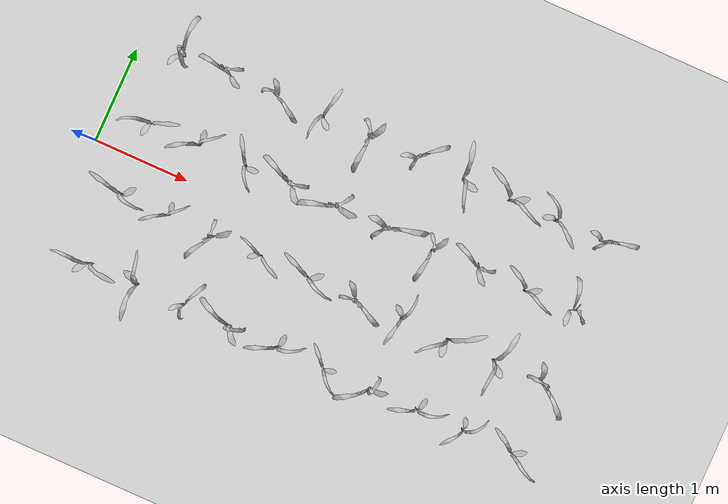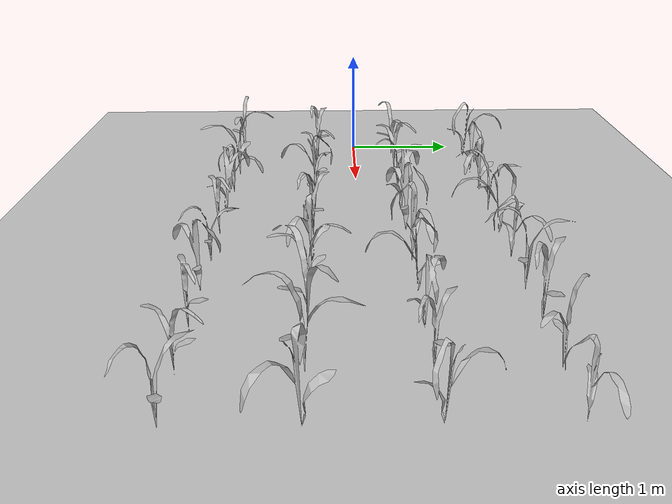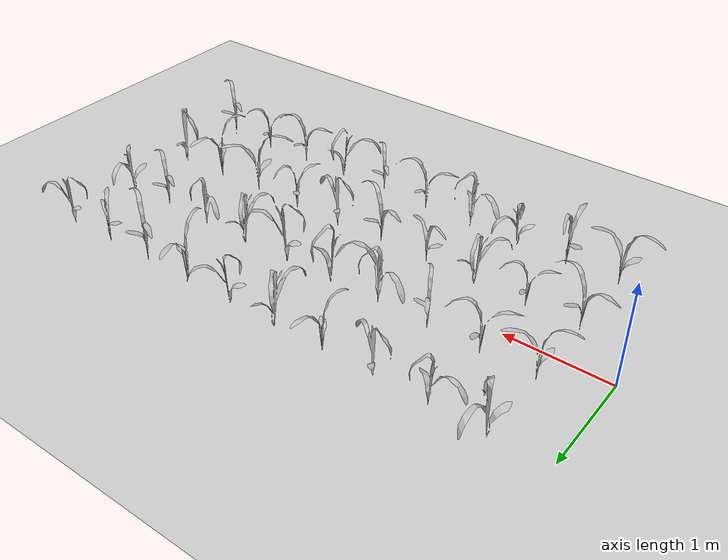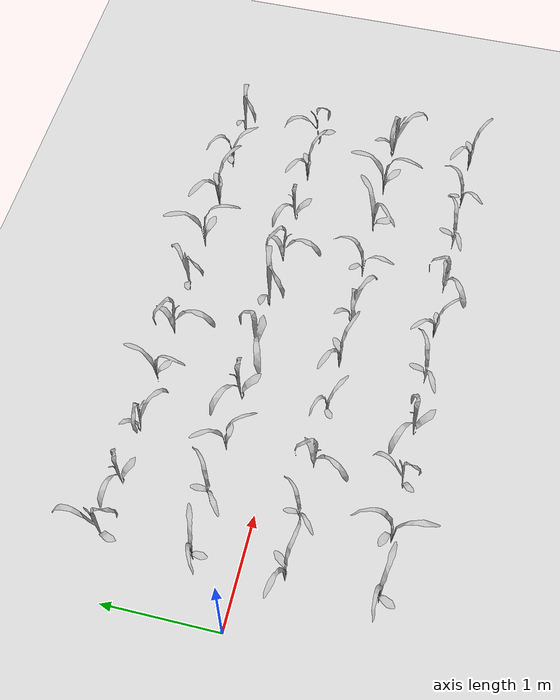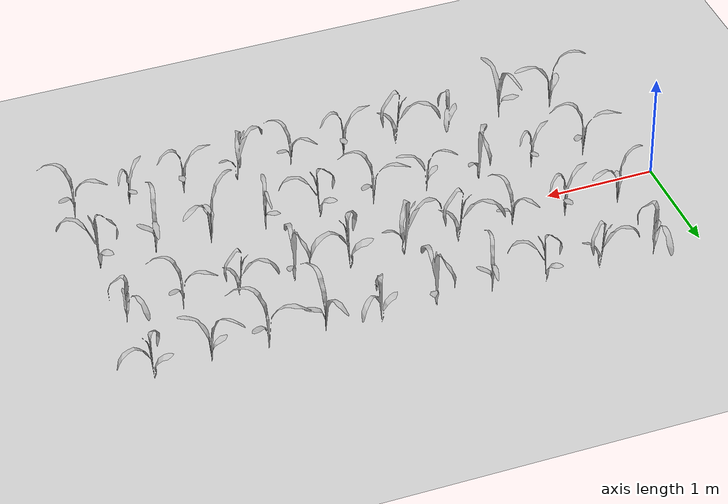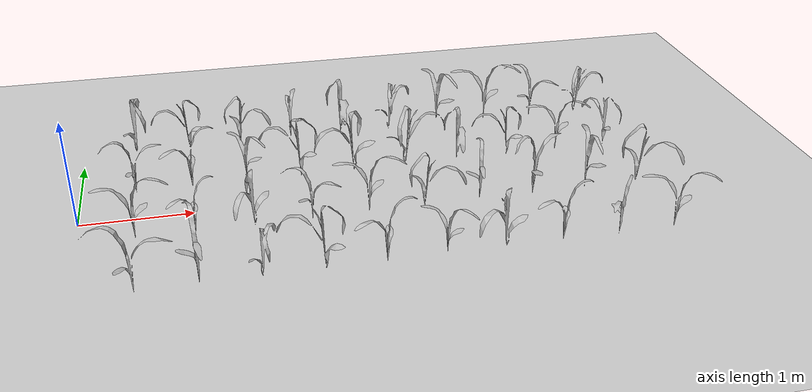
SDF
<sdf version="1.6">
 <world name="default">
  <model name="ground_plane">
   <static>1</static>
   <link name="link">
    <collision name="collision">
     <geometry><plane><normal>0 0 1</normal><size>100 100</size></plane></geometry>
     <surface>
      <contact><collide_bitmask>65535</collide_bitmask></contact>
      <friction><ode><mu>100</mu><mu2>50</mu2></ode></friction>
     </surface>
    </collision>
    <visual name="visual">
     <cast_shadows>0</cast_shadows>
     <geometry><plane><normal>0 0 1</normal><size>100 100</size></plane></geometry>
     <material>
      <script><uri>file://media/materials/scripts/gazebo.material</uri><name>Gazebo/Grey</name></script>
     </material>
    </visual>
   </link>
  </model>
  <model name="maize_02_0000">
   <pose>0.5 0.375 0.05 0 -0 2.486436329962448</pose>
   <link name="maize_02_0000_link">
    <inertial>
     <mass>5.0</mass>
     <inertia>
      <ixx>0.0033416667</ixx>
      <ixy>0</ixy>
      <ixz>0</ixz>
      <iyy>0.0033416667</iyy>
      <iyz>0</iyz>
      <izz>0.000016666667</izz>
     </inertia>
     <pose>0 0 0.1 0 0 0</pose>
    </inertial>
    <collision name="collision">
     <pose>0 0 0.2 0 -0 0</pose>
     <geometry><box><size>0.02 0.02 0.4</size></box></geometry>
     <surface><friction><ode><mu>10</mu><mu2>10</mu2></ode></friction></surface>
    </collision>
    <visual name="visual">
     <geometry>
      <mesh>
       <uri>model://maize_02/meshes/maize_02.dae</uri>
       <scale>0.594464190907645 0.594464190907645 0.594464190907645</scale>
      </mesh>
     </geometry>
    </visual>
   </link>
  </model>
  <model name="maize_01_0001">
   <pose>0.5 1.125 0.05 0 -0 2.298788414996738</pose>
   <link name="maize_01_0001_link">
    <inertial>
     <mass>5.0</mass>
     <inertia>
      <ixx>0.0033416667</ixx>
      <ixy>0</ixy>
      <ixz>0</ixz>
      <iyy>0.0033416667</iyy>
      <iyz>0</iyz>
      <izz>0.000016666667</izz>
     </inertia>
     <pose>0 0 0.1 0 0 0</pose>
    </inertial>
    <collision name="collision">
     <pose>0 0 0.2 0 -0 0</pose>
     <geometry><box><size>0.02 0.02 0.4</size></box></geometry>
     <surface><friction><ode><mu>10</mu><mu2>10</mu2></ode></friction></surface>
    </collision>
    <visual name="visual">
     <geometry>
      <mesh>
       <uri>model://maize_01/meshes/maize_01.dae</uri>
       <scale>0.6277734751738697 0.6277734751738697 0.6277734751738697</scale>
      </mesh>
     </geometry>
    </visual>
   </link>
  </model>
  <model name="maize_02_0002">
   <pose>0.5 -0.375 0.05 0 -0 5.080375280023383</pose>
   <link name="maize_02_0002_link">
    <inertial>
     <mass>5.0</mass>
     <inertia>
      <ixx>0.0033416667</ixx>
      <ixy>0</ixy>
      <ixz>0</ixz>
      <iyy>0.0033416667</iyy>
      <iyz>0</iyz>
      <izz>0.000016666667</izz>
     </inertia>
     <pose>0 0 0.1 0 0 0</pose>
    </inertial>
    <collision name="collision">
     <pose>0 0 0.2 0 -0 0</pose>
     <geometry><box><size>0.02 0.02 0.4</size></box></geometry>
     <surface><friction><ode><mu>10</mu><mu2>10</mu2></ode></friction></surface>
    </collision>
    <visual name="visual">
     <geometry>
      <mesh>
       <uri>model://maize_02/meshes/maize_02.dae</uri>
       <scale>0.6373901294734036 0.6373901294734036 0.6373901294734036</scale>
      </mesh>
     </geometry>
    </visual>
   </link>
  </model>
  <model name="maize_02_0003">
   <pose>0.5 -1.125 0.05 0 -0 2.0655652335273587</pose>
   <link name="maize_02_0003_link">
    <inertial>
     <mass>5.0</mass>
     <inertia>
      <ixx>0.0033416667</ixx>
      <ixy>0</ixy>
      <ixz>0</ixz>
      <iyy>0.0033416667</iyy>
      <iyz>0</iyz>
      <izz>0.000016666667</izz>
     </inertia>
     <pose>0 0 0.1 0 0 0</pose>
    </inertial>
    <collision name="collision">
     <pose>0 0 0.2 0 -0 0</pose>
     <geometry><box><size>0.02 0.02 0.4</size></box></geometry>
     <surface><friction><ode><mu>10</mu><mu2>10</mu2></ode></friction></surface>
    </collision>
    <visual name="visual">
     <geometry>
      <mesh>
       <uri>model://maize_02/meshes/maize_02.dae</uri>
       <scale>0.6587457137448713 0.6587457137448713 0.6587457137448713</scale>
      </mesh>
     </geometry>
    </visual>
   </link>
  </model>
  <model name="maize_02_0004">
   <pose>1.0 0.375 0.05 0 -0 5.888778220820629</pose>
   <link name="maize_02_0004_link">
    <inertial>
     <mass>5.0</mass>
     <inertia>
      <ixx>0.0033416667</ixx>
      <ixy>0</ixy>
      <ixz>0</ixz>
      <iyy>0.0033416667</iyy>
      <iyz>0</iyz>
      <izz>0.000016666667</izz>
     </inertia>
     <pose>0 0 0.1 0 0 0</pose>
    </inertial>
    <collision name="collision">
     <pose>0 0 0.2 0 -0 0</pose>
     <geometry><box><size>0.02 0.02 0.4</size></box></geometry>
     <surface><friction><ode><mu>10</mu><mu2>10</mu2></ode></friction></surface>
    </collision>
    <visual name="visual">
     <geometry>
      <mesh>
       <uri>model://maize_02/meshes/maize_02.dae</uri>
       <scale>0.5925092554410509 0.5925092554410509 0.5925092554410509</scale>
      </mesh>
     </geometry>
    </visual>
   </link>
  </model>
  <model name="maize_01_0005">
   <pose>1.0 1.125 0.05 0 -0 3.800942496032068</pose>
   <link name="maize_01_0005_link">
    <inertial>
     <mass>5.0</mass>
     <inertia>
      <ixx>0.0033416667</ixx>
      <ixy>0</ixy>
      <ixz>0</ixz>
      <iyy>0.0033416667</iyy>
      <iyz>0</iyz>
      <izz>0.000016666667</izz>
     </inertia>
     <pose>0 0 0.1 0 0 0</pose>
    </inertial>
    <collision name="collision">
     <pose>0 0 0.2 0 -0 0</pose>
     <geometry><box><size>0.02 0.02 0.4</size></box></geometry>
     <surface><friction><ode><mu>10</mu><mu2>10</mu2></ode></friction></surface>
    </collision>
    <visual name="visual">
     <geometry>
      <mesh>
       <uri>model://maize_01/meshes/maize_01.dae</uri>
       <scale>0.5658001392971347 0.5658001392971347 0.5658001392971347</scale>
      </mesh>
     </geometry>
    </visual>
   </link>
  </model>
  <model name="maize_02_0006">
   <pose>1.0 -0.375 0.05 0 -0 5.960453748156834</pose>
   <link name="maize_02_0006_link">
    <inertial>
     <mass>5.0</mass>
     <inertia>
      <ixx>0.0033416667</ixx>
      <ixy>0</ixy>
      <ixz>0</ixz>
      <iyy>0.0033416667</iyy>
      <iyz>0</iyz>
      <izz>0.000016666667</izz>
     </inertia>
     <pose>0 0 0.1 0 0 0</pose>
    </inertial>
    <collision name="collision">
     <pose>0 0 0.2 0 -0 0</pose>
     <geometry><box><size>0.02 0.02 0.4</size></box></geometry>
     <surface><friction><ode><mu>10</mu><mu2>10</mu2></ode></friction></surface>
    </collision>
    <visual name="visual">
     <geometry>
      <mesh>
       <uri>model://maize_02/meshes/maize_02.dae</uri>
       <scale>0.5101669844444433 0.5101669844444433 0.5101669844444433</scale>
      </mesh>
     </geometry>
    </visual>
   </link>
  </model>
  <model name="maize_02_0007">
   <pose>1.0 -1.125 0.05 0 -0 0.7257184616854857</pose>
   <link name="maize_02_0007_link">
    <inertial>
     <mass>5.0</mass>
     <inertia>
      <ixx>0.0033416667</ixx>
      <ixy>0</ixy>
      <ixz>0</ixz>
      <iyy>0.0033416667</iyy>
      <iyz>0</iyz>
      <izz>0.000016666667</izz>
     </inertia>
     <pose>0 0 0.1 0 0 0</pose>
    </inertial>
    <collision name="collision">
     <pose>0 0 0.2 0 -0 0</pose>
     <geometry><box><size>0.02 0.02 0.4</size></box></geometry>
     <surface><friction><ode><mu>10</mu><mu2>10</mu2></ode></friction></surface>
    </collision>
    <visual name="visual">
     <geometry>
      <mesh>
       <uri>model://maize_02/meshes/maize_02.dae</uri>
       <scale>0.6774858792550148 0.6774858792550148 0.6774858792550148</scale>
      </mesh>
     </geometry>
    </visual>
   </link>
  </model>
  <model name="maize_02_0008">
   <pose>1.5 0.375 0.05 0 -0 4.276486220324584</pose>
   <link name="maize_02_0008_link">
    <inertial>
     <mass>5.0</mass>
     <inertia>
      <ixx>0.0033416667</ixx>
      <ixy>0</ixy>
      <ixz>0</ixz>
      <iyy>0.0033416667</iyy>
      <iyz>0</iyz>
      <izz>0.000016666667</izz>
     </inertia>
     <pose>0 0 0.1 0 0 0</pose>
    </inertial>
    <collision name="collision">
     <pose>0 0 0.2 0 -0 0</pose>
     <geometry><box><size>0.02 0.02 0.4</size></box></geometry>
     <surface><friction><ode><mu>10</mu><mu2>10</mu2></ode></friction></surface>
    </collision>
    <visual name="visual">
     <geometry>
      <mesh>
       <uri>model://maize_02/meshes/maize_02.dae</uri>
       <scale>0.5624697977309072 0.5624697977309072 0.5624697977309072</scale>
      </mesh>
     </geometry>
    </visual>
   </link>
  </model>
  <model name="maize_01_0009">
   <pose>1.5 1.125 0.05 0 -0 0.226990537836368</pose>
   <link name="maize_01_0009_link">
    <inertial>
     <mass>5.0</mass>
     <inertia>
      <ixx>0.0033416667</ixx>
      <ixy>0</ixy>
      <ixz>0</ixz>
      <iyy>0.0033416667</iyy>
      <iyz>0</iyz>
      <izz>0.000016666667</izz>
     </inertia>
     <pose>0 0 0.1 0 0 0</pose>
    </inertial>
    <collision name="collision">
     <pose>0 0 0.2 0 -0 0</pose>
     <geometry><box><size>0.02 0.02 0.4</size></box></geometry>
     <surface><friction><ode><mu>10</mu><mu2>10</mu2></ode></friction></surface>
    </collision>
    <visual name="visual">
     <geometry>
      <mesh>
       <uri>model://maize_01/meshes/maize_01.dae</uri>
       <scale>0.5509734204890646 0.5509734204890646 0.5509734204890646</scale>
      </mesh>
     </geometry>
    </visual>
   </link>
  </model>
  <model name="maize_01_0010">
   <pose>1.5 -0.375 0.05 0 -0 4.998152133039663</pose>
   <link name="maize_01_0010_link">
    <inertial>
     <mass>5.0</mass>
     <inertia>
      <ixx>0.0033416667</ixx>
      <ixy>0</ixy>
      <ixz>0</ixz>
      <iyy>0.0033416667</iyy>
      <iyz>0</iyz>
      <izz>0.000016666667</izz>
     </inertia>
     <pose>0 0 0.1 0 0 0</pose>
    </inertial>
    <collision name="collision">
     <pose>0 0 0.2 0 -0 0</pose>
     <geometry><box><size>0.02 0.02 0.4</size></box></geometry>
     <surface><friction><ode><mu>10</mu><mu2>10</mu2></ode></friction></surface>
    </collision>
    <visual name="visual">
     <geometry>
      <mesh>
       <uri>model://maize_01/meshes/maize_01.dae</uri>
       <scale>0.5865168241783152 0.5865168241783152 0.5865168241783152</scale>
      </mesh>
     </geometry>
    </visual>
   </link>
  </model>
  <model name="maize_01_0011">
   <pose>1.5 -1.125 0.05 0 -0 1.9324223692315545</pose>
   <link name="maize_01_0011_link">
    <inertial>
     <mass>5.0</mass>
     <inertia>
      <ixx>0.0033416667</ixx>
      <ixy>0</ixy>
      <ixz>0</ixz>
      <iyy>0.0033416667</iyy>
      <iyz>0</iyz>
      <izz>0.000016666667</izz>
     </inertia>
     <pose>0 0 0.1 0 0 0</pose>
    </inertial>
    <collision name="collision">
     <pose>0 0 0.2 0 -0 0</pose>
     <geometry><box><size>0.02 0.02 0.4</size></box></geometry>
     <surface><friction><ode><mu>10</mu><mu2>10</mu2></ode></friction></surface>
    </collision>
    <visual name="visual">
     <geometry>
      <mesh>
       <uri>model://maize_01/meshes/maize_01.dae</uri>
       <scale>0.5003540891792582 0.5003540891792582 0.5003540891792582</scale>
      </mesh>
     </geometry>
    </visual>
   </link>
  </model>
  <model name="maize_01_0012">
   <pose>2.0 0.375 0.05 0 -0 3.506546388485013</pose>
   <link name="maize_01_0012_link">
    <inertial>
     <mass>5.0</mass>
     <inertia>
      <ixx>0.0033416667</ixx>
      <ixy>0</ixy>
      <ixz>0</ixz>
      <iyy>0.0033416667</iyy>
      <iyz>0</iyz>
      <izz>0.000016666667</izz>
     </inertia>
     <pose>0 0 0.1 0 0 0</pose>
    </inertial>
    <collision name="collision">
     <pose>0 0 0.2 0 -0 0</pose>
     <geometry><box><size>0.02 0.02 0.4</size></box></geometry>
     <surface><friction><ode><mu>10</mu><mu2>10</mu2></ode></friction></surface>
    </collision>
    <visual name="visual">
     <geometry>
      <mesh>
       <uri>model://maize_01/meshes/maize_01.dae</uri>
       <scale>0.6499434881953365 0.6499434881953365 0.6499434881953365</scale>
      </mesh>
     </geometry>
    </visual>
   </link>
  </model>
  <model name="maize_02_0013">
   <pose>2.0 1.125 0.05 0 -0 3.5083101263330416</pose>
   <link name="maize_02_0013_link">
    <inertial>
     <mass>5.0</mass>
     <inertia>
      <ixx>0.0033416667</ixx>
      <ixy>0</ixy>
      <ixz>0</ixz>
      <iyy>0.0033416667</iyy>
      <iyz>0</iyz>
      <izz>0.000016666667</izz>
     </inertia>
     <pose>0 0 0.1 0 0 0</pose>
    </inertial>
    <collision name="collision">
     <pose>0 0 0.2 0 -0 0</pose>
     <geometry><box><size>0.02 0.02 0.4</size></box></geometry>
     <surface><friction><ode><mu>10</mu><mu2>10</mu2></ode></friction></surface>
    </collision>
    <visual name="visual">
     <geometry>
      <mesh>
       <uri>model://maize_02/meshes/maize_02.dae</uri>
       <scale>0.5802755091073676 0.5802755091073676 0.5802755091073676</scale>
      </mesh>
     </geometry>
    </visual>
   </link>
  </model>
  <model name="maize_02_0014">
   <pose>2.0 -0.375 0.05 0 -0 1.6967970722052805</pose>
   <link name="maize_02_0014_link">
    <inertial>
     <mass>5.0</mass>
     <inertia>
      <ixx>0.0033416667</ixx>
      <ixy>0</ixy>
      <ixz>0</ixz>
      <iyy>0.0033416667</iyy>
      <iyz>0</iyz>
      <izz>0.000016666667</izz>
     </inertia>
     <pose>0 0 0.1 0 0 0</pose>
    </inertial>
    <collision name="collision">
     <pose>0 0 0.2 0 -0 0</pose>
     <geometry><box><size>0.02 0.02 0.4</size></box></geometry>
     <surface><friction><ode><mu>10</mu><mu2>10</mu2></ode></friction></surface>
    </collision>
    <visual name="visual">
     <geometry>
      <mesh>
       <uri>model://maize_02/meshes/maize_02.dae</uri>
       <scale>0.5231342005749441 0.5231342005749441 0.5231342005749441</scale>
      </mesh>
     </geometry>
    </visual>
   </link>
  </model>
  <model name="maize_01_0015">
   <pose>2.0 -1.125 0.05 0 -0 3.519975309279825</pose>
   <link name="maize_01_0015_link">
    <inertial>
     <mass>5.0</mass>
     <inertia>
      <ixx>0.0033416667</ixx>
      <ixy>0</ixy>
      <ixz>0</ixz>
      <iyy>0.0033416667</iyy>
      <iyz>0</iyz>
      <izz>0.000016666667</izz>
     </inertia>
     <pose>0 0 0.1 0 0 0</pose>
    </inertial>
    <collision name="collision">
     <pose>0 0 0.2 0 -0 0</pose>
     <geometry><box><size>0.02 0.02 0.4</size></box></geometry>
     <surface><friction><ode><mu>10</mu><mu2>10</mu2></ode></friction></surface>
    </collision>
    <visual name="visual">
     <geometry>
      <mesh>
       <uri>model://maize_01/meshes/maize_01.dae</uri>
       <scale>0.6468035016286179 0.6468035016286179 0.6468035016286179</scale>
      </mesh>
     </geometry>
    </visual>
   </link>
  </model>
  <model name="maize_01_0016">
   <pose>2.5 0.375 0.05 0 -0 4.247404974419108</pose>
   <link name="maize_01_0016_link">
    <inertial>
     <mass>5.0</mass>
     <inertia>
      <ixx>0.0033416667</ixx>
      <ixy>0</ixy>
      <ixz>0</ixz>
      <iyy>0.0033416667</iyy>
      <iyz>0</iyz>
      <izz>0.000016666667</izz>
     </inertia>
     <pose>0 0 0.1 0 0 0</pose>
    </inertial>
    <collision name="collision">
     <pose>0 0 0.2 0 -0 0</pose>
     <geometry><box><size>0.02 0.02 0.4</size></box></geometry>
     <surface><friction><ode><mu>10</mu><mu2>10</mu2></ode></friction></surface>
    </collision>
    <visual name="visual">
     <geometry>
      <mesh>
       <uri>model://maize_01/meshes/maize_01.dae</uri>
       <scale>0.6690471731804969 0.6690471731804969 0.6690471731804969</scale>
      </mesh>
     </geometry>
    </visual>
   </link>
  </model>
  <model name="maize_01_0017">
   <pose>2.5 1.125 0.05 0 -0 5.449269828116384</pose>
   <link name="maize_01_0017_link">
    <inertial>
     <mass>5.0</mass>
     <inertia>
      <ixx>0.0033416667</ixx>
      <ixy>0</ixy>
      <ixz>0</ixz>
      <iyy>0.0033416667</iyy>
      <iyz>0</iyz>
      <izz>0.000016666667</izz>
     </inertia>
     <pose>0 0 0.1 0 0 0</pose>
    </inertial>
    <collision name="collision">
     <pose>0 0 0.2 0 -0 0</pose>
     <geometry><box><size>0.02 0.02 0.4</size></box></geometry>
     <surface><friction><ode><mu>10</mu><mu2>10</mu2></ode></friction></surface>
    </collision>
    <visual name="visual">
     <geometry>
      <mesh>
       <uri>model://maize_01/meshes/maize_01.dae</uri>
       <scale>0.6421622239480822 0.6421622239480822 0.6421622239480822</scale>
      </mesh>
     </geometry>
    </visual>
   </link>
  </model>
  <model name="maize_02_0018">
   <pose>2.5 -0.375 0.05 0 -0 4.906010909218893</pose>
   <link name="maize_02_0018_link">
    <inertial>
     <mass>5.0</mass>
     <inertia>
      <ixx>0.0033416667</ixx>
      <ixy>0</ixy>
      <ixz>0</ixz>
      <iyy>0.0033416667</iyy>
      <iyz>0</iyz>
      <izz>0.000016666667</izz>
     </inertia>
     <pose>0 0 0.1 0 0 0</pose>
    </inertial>
    <collision name="collision">
     <pose>0 0 0.2 0 -0 0</pose>
     <geometry><box><size>0.02 0.02 0.4</size></box></geometry>
     <surface><friction><ode><mu>10</mu><mu2>10</mu2></ode></friction></surface>
    </collision>
    <visual name="visual">
     <geometry>
      <mesh>
       <uri>model://maize_02/meshes/maize_02.dae</uri>
       <scale>0.626600553921358 0.626600553921358 0.626600553921358</scale>
      </mesh>
     </geometry>
    </visual>
   </link>
  </model>
  <model name="maize_02_0019">
   <pose>2.5 -1.125 0.05 0 -0 5.69318676119266</pose>
   <link name="maize_02_0019_link">
    <inertial>
     <mass>5.0</mass>
     <inertia>
      <ixx>0.0033416667</ixx>
      <ixy>0</ixy>
      <ixz>0</ixz>
      <iyy>0.0033416667</iyy>
      <iyz>0</iyz>
      <izz>0.000016666667</izz>
     </inertia>
     <pose>0 0 0.1 0 0 0</pose>
    </inertial>
    <collision name="collision">
     <pose>0 0 0.2 0 -0 0</pose>
     <geometry><box><size>0.02 0.02 0.4</size></box></geometry>
     <surface><friction><ode><mu>10</mu><mu2>10</mu2></ode></friction></surface>
    </collision>
    <visual name="visual">
     <geometry>
      <mesh>
       <uri>model://maize_02/meshes/maize_02.dae</uri>
       <scale>0.5929270849490827 0.5929270849490827 0.5929270849490827</scale>
      </mesh>
     </geometry>
    </visual>
   </link>
  </model>
  <model name="maize_01_0020">
   <pose>3.0 0.375 0.05 0 -0 1.043117871051002</pose>
   <link name="maize_01_0020_link">
    <inertial>
     <mass>5.0</mass>
     <inertia>
      <ixx>0.0033416667</ixx>
      <ixy>0</ixy>
      <ixz>0</ixz>
      <iyy>0.0033416667</iyy>
      <iyz>0</iyz>
      <izz>0.000016666667</izz>
     </inertia>
     <pose>0 0 0.1 0 0 0</pose>
    </inertial>
    <collision name="collision">
     <pose>0 0 0.2 0 -0 0</pose>
     <geometry><box><size>0.02 0.02 0.4</size></box></geometry>
     <surface><friction><ode><mu>10</mu><mu2>10</mu2></ode></friction></surface>
    </collision>
    <visual name="visual">
     <geometry>
      <mesh>
       <uri>model://maize_01/meshes/maize_01.dae</uri>
       <scale>0.6769761855756116 0.6769761855756116 0.6769761855756116</scale>
      </mesh>
     </geometry>
    </visual>
   </link>
  </model>
  <model name="maize_01_0021">
   <pose>3.0 1.125 0.05 0 -0 1.5060979926703266</pose>
   <link name="maize_01_0021_link">
    <inertial>
     <mass>5.0</mass>
     <inertia>
      <ixx>0.0033416667</ixx>
      <ixy>0</ixy>
      <ixz>0</ixz>
      <iyy>0.0033416667</iyy>
      <iyz>0</iyz>
      <izz>0.000016666667</izz>
     </inertia>
     <pose>0 0 0.1 0 0 0</pose>
    </inertial>
    <collision name="collision">
     <pose>0 0 0.2 0 -0 0</pose>
     <geometry><box><size>0.02 0.02 0.4</size></box></geometry>
     <surface><friction><ode><mu>10</mu><mu2>10</mu2></ode></friction></surface>
    </collision>
    <visual name="visual">
     <geometry>
      <mesh>
       <uri>model://maize_01/meshes/maize_01.dae</uri>
       <scale>0.5539245820906094 0.5539245820906094 0.5539245820906094</scale>
      </mesh>
     </geometry>
    </visual>
   </link>
  </model>
  <model name="maize_01_0022">
   <pose>3.0 -0.375 0.05 0 -0 0.33031992653440345</pose>
   <link name="maize_01_0022_link">
    <inertial>
     <mass>5.0</mass>
     <inertia>
      <ixx>0.0033416667</ixx>
      <ixy>0</ixy>
      <ixz>0</ixz>
      <iyy>0.0033416667</iyy>
      <iyz>0</iyz>
      <izz>0.000016666667</izz>
     </inertia>
     <pose>0 0 0.1 0 0 0</pose>
    </inertial>
    <collision name="collision">
     <pose>0 0 0.2 0 -0 0</pose>
     <geometry><box><size>0.02 0.02 0.4</size></box></geometry>
     <surface><friction><ode><mu>10</mu><mu2>10</mu2></ode></friction></surface>
    </collision>
    <visual name="visual">
     <geometry>
      <mesh>
       <uri>model://maize_01/meshes/maize_01.dae</uri>
       <scale>0.5847663939026114 0.5847663939026114 0.5847663939026114</scale>
      </mesh>
     </geometry>
    </visual>
   </link>
  </model>
  <model name="maize_02_0023">
   <pose>3.0 -1.125 0.05 0 -0 4.489898993022544</pose>
   <link name="maize_02_0023_link">
    <inertial>
     <mass>5.0</mass>
     <inertia>
      <ixx>0.0033416667</ixx>
      <ixy>0</ixy>
      <ixz>0</ixz>
      <iyy>0.0033416667</iyy>
      <iyz>0</iyz>
      <izz>0.000016666667</izz>
     </inertia>
     <pose>0 0 0.1 0 0 0</pose>
    </inertial>
    <collision name="collision">
     <pose>0 0 0.2 0 -0 0</pose>
     <geometry><box><size>0.02 0.02 0.4</size></box></geometry>
     <surface><friction><ode><mu>10</mu><mu2>10</mu2></ode></friction></surface>
    </collision>
    <visual name="visual">
     <geometry>
      <mesh>
       <uri>model://maize_02/meshes/maize_02.dae</uri>
       <scale>0.5223654487258567 0.5223654487258567 0.5223654487258567</scale>
      </mesh>
     </geometry>
    </visual>
   </link>
  </model>
  <model name="maize_01_0024">
   <pose>3.5 0.375 0.05 0 -0 5.3651282673576715</pose>
   <link name="maize_01_0024_link">
    <inertial>
     <mass>5.0</mass>
     <inertia>
      <ixx>0.0033416667</ixx>
      <ixy>0</ixy>
      <ixz>0</ixz>
      <iyy>0.0033416667</iyy>
      <iyz>0</iyz>
      <izz>0.000016666667</izz>
     </inertia>
     <pose>0 0 0.1 0 0 0</pose>
    </inertial>
    <collision name="collision">
     <pose>0 0 0.2 0 -0 0</pose>
     <geometry><box><size>0.02 0.02 0.4</size></box></geometry>
     <surface><friction><ode><mu>10</mu><mu2>10</mu2></ode></friction></surface>
    </collision>
    <visual name="visual">
     <geometry>
      <mesh>
       <uri>model://maize_01/meshes/maize_01.dae</uri>
       <scale>0.5986903436208948 0.5986903436208948 0.5986903436208948</scale>
      </mesh>
     </geometry>
    </visual>
   </link>
  </model>
  <model name="maize_02_0025">
   <pose>3.5 1.125 0.05 0 -0 3.974233096109407</pose>
   <link name="maize_02_0025_link">
    <inertial>
     <mass>5.0</mass>
     <inertia>
      <ixx>0.0033416667</ixx>
      <ixy>0</ixy>
      <ixz>0</ixz>
      <iyy>0.0033416667</iyy>
      <iyz>0</iyz>
      <izz>0.000016666667</izz>
     </inertia>
     <pose>0 0 0.1 0 0 0</pose>
    </inertial>
    <collision name="collision">
     <pose>0 0 0.2 0 -0 0</pose>
     <geometry><box><size>0.02 0.02 0.4</size></box></geometry>
     <surface><friction><ode><mu>10</mu><mu2>10</mu2></ode></friction></surface>
    </collision>
    <visual name="visual">
     <geometry>
      <mesh>
       <uri>model://maize_02/meshes/maize_02.dae</uri>
       <scale>0.6840697809252837 0.6840697809252837 0.6840697809252837</scale>
      </mesh>
     </geometry>
    </visual>
   </link>
  </model>
  <model name="maize_02_0026">
   <pose>3.5 -0.375 0.05 0 -0 0.3855338366262953</pose>
   <link name="maize_02_0026_link">
    <inertial>
     <mass>5.0</mass>
     <inertia>
      <ixx>0.0033416667</ixx>
      <ixy>0</ixy>
      <ixz>0</ixz>
      <iyy>0.0033416667</iyy>
      <iyz>0</iyz>
      <izz>0.000016666667</izz>
     </inertia>
     <pose>0 0 0.1 0 0 0</pose>
    </inertial>
    <collision name="collision">
     <pose>0 0 0.2 0 -0 0</pose>
     <geometry><box><size>0.02 0.02 0.4</size></box></geometry>
     <surface><friction><ode><mu>10</mu><mu2>10</mu2></ode></friction></surface>
    </collision>
    <visual name="visual">
     <geometry>
      <mesh>
       <uri>model://maize_02/meshes/maize_02.dae</uri>
       <scale>0.5689283618021689 0.5689283618021689 0.5689283618021689</scale>
      </mesh>
     </geometry>
    </visual>
   </link>
  </model>
  <model name="maize_01_0027">
   <pose>3.5 -1.125 0.05 0 -0 4.535984097456068</pose>
   <link name="maize_01_0027_link">
    <inertial>
     <mass>5.0</mass>
     <inertia>
      <ixx>0.0033416667</ixx>
      <ixy>0</ixy>
      <ixz>0</ixz>
      <iyy>0.0033416667</iyy>
      <iyz>0</iyz>
      <izz>0.000016666667</izz>
     </inertia>
     <pose>0 0 0.1 0 0 0</pose>
    </inertial>
    <collision name="collision">
     <pose>0 0 0.2 0 -0 0</pose>
     <geometry><box><size>0.02 0.02 0.4</size></box></geometry>
     <surface><friction><ode><mu>10</mu><mu2>10</mu2></ode></friction></surface>
    </collision>
    <visual name="visual">
     <geometry>
      <mesh>
       <uri>model://maize_01/meshes/maize_01.dae</uri>
       <scale>0.6088326556180363 0.6088326556180363 0.6088326556180363</scale>
      </mesh>
     </geometry>
    </visual>
   </link>
  </model>
  <model name="maize_01_0028">
   <pose>4.0 0.375 0.05 0 -0 3.485553312830647</pose>
   <link name="maize_01_0028_link">
    <inertial>
     <mass>5.0</mass>
     <inertia>
      <ixx>0.0033416667</ixx>
      <ixy>0</ixy>
      <ixz>0</ixz>
      <iyy>0.0033416667</iyy>
      <iyz>0</iyz>
      <izz>0.000016666667</izz>
     </inertia>
     <pose>0 0 0.1 0 0 0</pose>
    </inertial>
    <collision name="collision">
     <pose>0 0 0.2 0 -0 0</pose>
     <geometry><box><size>0.02 0.02 0.4</size></box></geometry>
     <surface><friction><ode><mu>10</mu><mu2>10</mu2></ode></friction></surface>
    </collision>
    <visual name="visual">
     <geometry>
      <mesh>
       <uri>model://maize_01/meshes/maize_01.dae</uri>
       <scale>0.5595020058112883 0.5595020058112883 0.5595020058112883</scale>
      </mesh>
     </geometry>
    </visual>
   </link>
  </model>
  <model name="maize_02_0029">
   <pose>4.0 1.125 0.05 0 -0 4.791513384607671</pose>
   <link name="maize_02_0029_link">
    <inertial>
     <mass>5.0</mass>
     <inertia>
      <ixx>0.0033416667</ixx>
      <ixy>0</ixy>
      <ixz>0</ixz>
      <iyy>0.0033416667</iyy>
      <iyz>0</iyz>
      <izz>0.000016666667</izz>
     </inertia>
     <pose>0 0 0.1 0 0 0</pose>
    </inertial>
    <collision name="collision">
     <pose>0 0 0.2 0 -0 0</pose>
     <geometry><box><size>0.02 0.02 0.4</size></box></geometry>
     <surface><friction><ode><mu>10</mu><mu2>10</mu2></ode></friction></surface>
    </collision>
    <visual name="visual">
     <geometry>
      <mesh>
       <uri>model://maize_02/meshes/maize_02.dae</uri>
       <scale>0.6988486792723937 0.6988486792723937 0.6988486792723937</scale>
      </mesh>
     </geometry>
    </visual>
   </link>
  </model>
  <model name="maize_02_0030">
   <pose>4.0 -0.375 0.05 0 -0 2.7621582964979345</pose>
   <link name="maize_02_0030_link">
    <inertial>
     <mass>5.0</mass>
     <inertia>
      <ixx>0.0033416667</ixx>
      <ixy>0</ixy>
      <ixz>0</ixz>
      <iyy>0.0033416667</iyy>
      <iyz>0</iyz>
      <izz>0.000016666667</izz>
     </inertia>
     <pose>0 0 0.1 0 0 0</pose>
    </inertial>
    <collision name="collision">
     <pose>0 0 0.2 0 -0 0</pose>
     <geometry><box><size>0.02 0.02 0.4</size></box></geometry>
     <surface><friction><ode><mu>10</mu><mu2>10</mu2></ode></friction></surface>
    </collision>
    <visual name="visual">
     <geometry>
      <mesh>
       <uri>model://maize_02/meshes/maize_02.dae</uri>
       <scale>0.6989581909866358 0.6989581909866358 0.6989581909866358</scale>
      </mesh>
     </geometry>
    </visual>
   </link>
  </model>
  <model name="maize_02_0031">
   <pose>4.0 -1.125 0.05 0 -0 5.6240680111964645</pose>
   <link name="maize_02_0031_link">
    <inertial>
     <mass>5.0</mass>
     <inertia>
      <ixx>0.0033416667</ixx>
      <ixy>0</ixy>
      <ixz>0</ixz>
      <iyy>0.0033416667</iyy>
      <iyz>0</iyz>
      <izz>0.000016666667</izz>
     </inertia>
     <pose>0 0 0.1 0 0 0</pose>
    </inertial>
    <collision name="collision">
     <pose>0 0 0.2 0 -0 0</pose>
     <geometry><box><size>0.02 0.02 0.4</size></box></geometry>
     <surface><friction><ode><mu>10</mu><mu2>10</mu2></ode></friction></surface>
    </collision>
    <visual name="visual">
     <geometry>
      <mesh>
       <uri>model://maize_02/meshes/maize_02.dae</uri>
       <scale>0.5756476119257931 0.5756476119257931 0.5756476119257931</scale>
      </mesh>
     </geometry>
    </visual>
   </link>
  </model>
  <model name="maize_02_0032">
   <pose>4.5 0.375 0.05 0 -0 4.8015691944950385</pose>
   <link name="maize_02_0032_link">
    <inertial>
     <mass>5.0</mass>
     <inertia>
      <ixx>0.0033416667</ixx>
      <ixy>0</ixy>
      <ixz>0</ixz>
      <iyy>0.0033416667</iyy>
      <iyz>0</iyz>
      <izz>0.000016666667</izz>
     </inertia>
     <pose>0 0 0.1 0 0 0</pose>
    </inertial>
    <collision name="collision">
     <pose>0 0 0.2 0 -0 0</pose>
     <geometry><box><size>0.02 0.02 0.4</size></box></geometry>
     <surface><friction><ode><mu>10</mu><mu2>10</mu2></ode></friction></surface>
    </collision>
    <visual name="visual">
     <geometry>
      <mesh>
       <uri>model://maize_02/meshes/maize_02.dae</uri>
       <scale>0.5925649161468299 0.5925649161468299 0.5925649161468299</scale>
      </mesh>
     </geometry>
    </visual>
   </link>
  </model>
  <model name="maize_02_0033">
   <pose>4.5 1.125 0.05 0 -0 1.4349793509265023</pose>
   <link name="maize_02_0033_link">
    <inertial>
     <mass>5.0</mass>
     <inertia>
      <ixx>0.0033416667</ixx>
      <ixy>0</ixy>
      <ixz>0</ixz>
      <iyy>0.0033416667</iyy>
      <iyz>0</iyz>
      <izz>0.000016666667</izz>
     </inertia>
     <pose>0 0 0.1 0 0 0</pose>
    </inertial>
    <collision name="collision">
     <pose>0 0 0.2 0 -0 0</pose>
     <geometry><box><size>0.02 0.02 0.4</size></box></geometry>
     <surface><friction><ode><mu>10</mu><mu2>10</mu2></ode></friction></surface>
    </collision>
    <visual name="visual">
     <geometry>
      <mesh>
       <uri>model://maize_02/meshes/maize_02.dae</uri>
       <scale>0.587815625584764 0.587815625584764 0.587815625584764</scale>
      </mesh>
     </geometry>
    </visual>
   </link>
  </model>
  <model name="maize_02_0034">
   <pose>4.5 -0.375 0.05 0 -0 3.551398869278533</pose>
   <link name="maize_02_0034_link">
    <inertial>
     <mass>5.0</mass>
     <inertia>
      <ixx>0.0033416667</ixx>
      <ixy>0</ixy>
      <ixz>0</ixz>
      <iyy>0.0033416667</iyy>
      <iyz>0</iyz>
      <izz>0.000016666667</izz>
     </inertia>
     <pose>0 0 0.1 0 0 0</pose>
    </inertial>
    <collision name="collision">
     <pose>0 0 0.2 0 -0 0</pose>
     <geometry><box><size>0.02 0.02 0.4</size></box></geometry>
     <surface><friction><ode><mu>10</mu><mu2>10</mu2></ode></friction></surface>
    </collision>
    <visual name="visual">
     <geometry>
      <mesh>
       <uri>model://maize_02/meshes/maize_02.dae</uri>
       <scale>0.6789430266731954 0.6789430266731954 0.6789430266731954</scale>
      </mesh>
     </geometry>
    </visual>
   </link>
  </model>
  <model name="maize_02_0035">
   <pose>4.5 -1.125 0.05 0 -0 6.18063007604289</pose>
   <link name="maize_02_0035_link">
    <inertial>
     <mass>5.0</mass>
     <inertia>
      <ixx>0.0033416667</ixx>
      <ixy>0</ixy>
      <ixz>0</ixz>
      <iyy>0.0033416667</iyy>
      <iyz>0</iyz>
      <izz>0.000016666667</izz>
     </inertia>
     <pose>0 0 0.1 0 0 0</pose>
    </inertial>
    <collision name="collision">
     <pose>0 0 0.2 0 -0 0</pose>
     <geometry><box><size>0.02 0.02 0.4</size></box></geometry>
     <surface><friction><ode><mu>10</mu><mu2>10</mu2></ode></friction></surface>
    </collision>
    <visual name="visual">
     <geometry>
      <mesh>
       <uri>model://maize_02/meshes/maize_02.dae</uri>
       <scale>0.5166875342991507 0.5166875342991507 0.5166875342991507</scale>
      </mesh>
     </geometry>
    </visual>
   </link>
  </model>
  <model name="maize_01_0036">
   <pose>5.0 0.375 0.05 0 -0 2.652369312314264</pose>
   <link name="maize_01_0036_link">
    <inertial>
     <mass>5.0</mass>
     <inertia>
      <ixx>0.0033416667</ixx>
      <ixy>0</ixy>
      <ixz>0</ixz>
      <iyy>0.0033416667</iyy>
      <iyz>0</iyz>
      <izz>0.000016666667</izz>
     </inertia>
     <pose>0 0 0.1 0 0 0</pose>
    </inertial>
    <collision name="collision">
     <pose>0 0 0.2 0 -0 0</pose>
     <geometry><box><size>0.02 0.02 0.4</size></box></geometry>
     <surface><friction><ode><mu>10</mu><mu2>10</mu2></ode></friction></surface>
    </collision>
    <visual name="visual">
     <geometry>
      <mesh>
       <uri>model://maize_01/meshes/maize_01.dae</uri>
       <scale>0.5601748754102126 0.5601748754102126 0.5601748754102126</scale>
      </mesh>
     </geometry>
    </visual>
   </link>
  </model>
  <model name="maize_01_0037">
   <pose>5.0 1.125 0.05 0 -0 1.0055387141877898</pose>
   <link name="maize_01_0037_link">
    <inertial>
     <mass>5.0</mass>
     <inertia>
      <ixx>0.0033416667</ixx>
      <ixy>0</ixy>
      <ixz>0</ixz>
      <iyy>0.0033416667</iyy>
      <iyz>0</iyz>
      <izz>0.000016666667</izz>
     </inertia>
     <pose>0 0 0.1 0 0 0</pose>
    </inertial>
    <collision name="collision">
     <pose>0 0 0.2 0 -0 0</pose>
     <geometry><box><size>0.02 0.02 0.4</size></box></geometry>
     <surface><friction><ode><mu>10</mu><mu2>10</mu2></ode></friction></surface>
    </collision>
    <visual name="visual">
     <geometry>
      <mesh>
       <uri>model://maize_01/meshes/maize_01.dae</uri>
       <scale>0.5573503519460182 0.5573503519460182 0.5573503519460182</scale>
      </mesh>
     </geometry>
    </visual>
   </link>
  </model>
  <model name="maize_01_0038">
   <pose>5.0 -0.375 0.05 0 -0 0.033546879748599004</pose>
   <link name="maize_01_0038_link">
    <inertial>
     <mass>5.0</mass>
     <inertia>
      <ixx>0.0033416667</ixx>
      <ixy>0</ixy>
      <ixz>0</ixz>
      <iyy>0.0033416667</iyy>
      <iyz>0</iyz>
      <izz>0.000016666667</izz>
     </inertia>
     <pose>0 0 0.1 0 0 0</pose>
    </inertial>
    <collision name="collision">
     <pose>0 0 0.2 0 -0 0</pose>
     <geometry><box><size>0.02 0.02 0.4</size></box></geometry>
     <surface><friction><ode><mu>10</mu><mu2>10</mu2></ode></friction></surface>
    </collision>
    <visual name="visual">
     <geometry>
      <mesh>
       <uri>model://maize_01/meshes/maize_01.dae</uri>
       <scale>0.652328931683679 0.652328931683679 0.652328931683679</scale>
      </mesh>
     </geometry>
    </visual>
   </link>
  </model>
  <model name="maize_02_0039">
   <pose>5.0 -1.125 0.05 0 -0 4.7448974235242325</pose>
   <link name="maize_02_0039_link">
    <inertial>
     <mass>5.0</mass>
     <inertia>
      <ixx>0.0033416667</ixx>
      <ixy>0</ixy>
      <ixz>0</ixz>
      <iyy>0.0033416667</iyy>
      <iyz>0</iyz>
      <izz>0.000016666667</izz>
     </inertia>
     <pose>0 0 0.1 0 0 0</pose>
    </inertial>
    <collision name="collision">
     <pose>0 0 0.2 0 -0 0</pose>
     <geometry><box><size>0.02 0.02 0.4</size></box></geometry>
     <surface><friction><ode><mu>10</mu><mu2>10</mu2></ode></friction></surface>
    </collision>
    <visual name="visual">
     <geometry>
      <mesh>
       <uri>model://maize_02/meshes/maize_02.dae</uri>
       <scale>0.6150353287371257 0.6150353287371257 0.6150353287371257</scale>
      </mesh>
     </geometry>
    </visual>
   </link>
  </model>
 </world>
</sdf>
